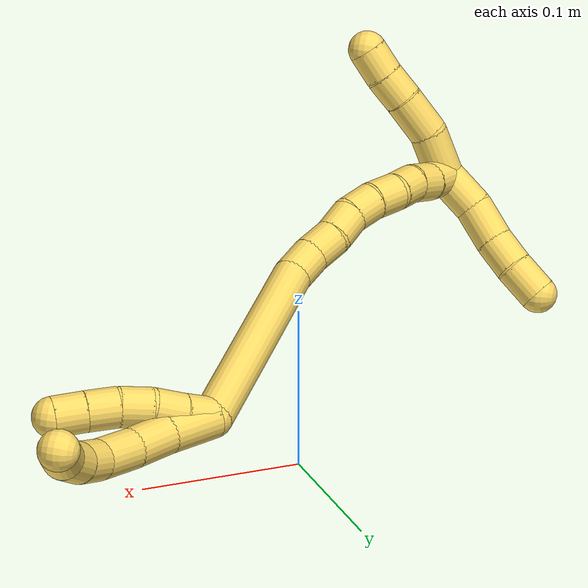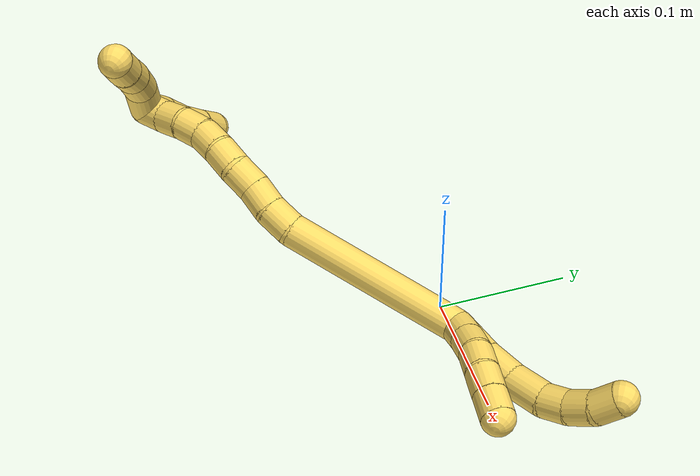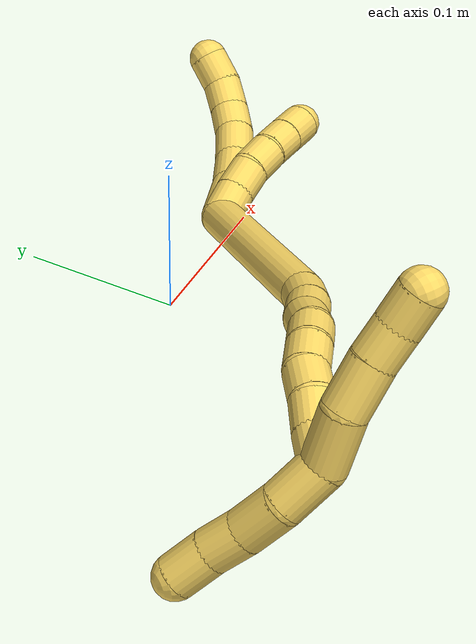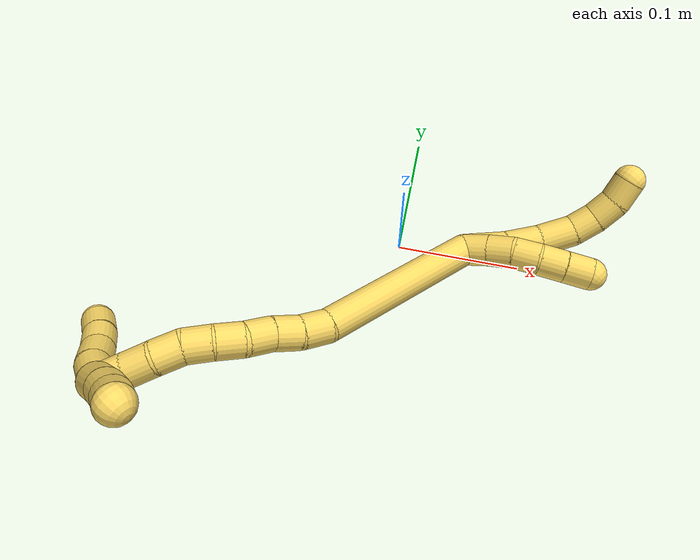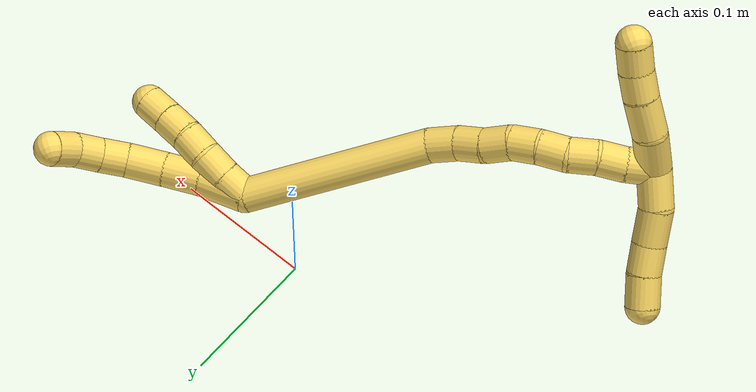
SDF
<sdf version="1.7">
 <world name="default">
  <model name="5">
   <static>0</static>
   <link name="5">
    <collision name="collision-cylinder-e_1_2_8">
     <pose>0.012932 0.000393 -0.010883 -3.10552 0.870906 -3.0641</pose>
     <geometry><cylinder><radius>0.0125</radius><length>0.033812</length></cylinder></geometry>
     <surface>
      <friction><ode><mu>1.16</mu><mu2>1.16</mu2><slip1>0</slip1><slip2>0</slip2></ode></friction>
      <contact><ode><kp>1e+06</kp><kd>1</kd><max_vel>0</max_vel><min_depth>0.001</min_depth></ode></contact>
     </surface>
    </collision>
    <visual name="visual-cylinder-e_1_2_8">
     <pose>0.012932 0.000393 -0.010883 -3.10552 0.870906 -3.0641</pose>
     <geometry><cylinder><radius>0.0125</radius><length>0.033812</length></cylinder></geometry>
     <material><ambient>1 0.858824 0.4 1</ambient></material>
    </visual>
    <collision name="collision-cylinder-e_2_8_9">
     <pose>0.037528 0.000729 -0.029352 3.1341 0.994122 3.12778</pose>
     <geometry><cylinder><radius>0.0125</radius><length>0.027829</length></cylinder></geometry>
     <surface>
      <friction><ode><mu>1.16</mu><mu2>1.16</mu2><slip1>0</slip1><slip2>0</slip2></ode></friction>
      <contact><ode><kp>1e+06</kp><kd>1</kd><max_vel>0</max_vel><min_depth>0.001</min_depth></ode></contact>
     </surface>
    </collision>
    <visual name="visual-cylinder-e_2_8_9">
     <pose>0.037528 0.000729 -0.029352 3.1341 0.994122 3.12778</pose>
     <geometry><cylinder><radius>0.0125</radius><length>0.027829</length></cylinder></geometry>
     <material><ambient>1 0.858824 0.4 1</ambient></material>
    </visual>
    <collision name="collision-cylinder-e_3_9_10">
     <pose>0.061315 -0.000936 -0.043908 2.91489 1.03777 2.74807</pose>
     <geometry><cylinder><radius>0.0125</radius><length>0.028152</length></cylinder></geometry>
     <surface>
      <friction><ode><mu>1.16</mu><mu2>1.16</mu2><slip1>0</slip1><slip2>0</slip2></ode></friction>
      <contact><ode><kp>1e+06</kp><kd>1</kd><max_vel>0</max_vel><min_depth>0.001</min_depth></ode></contact>
     </surface>
    </collision>
    <visual name="visual-cylinder-e_3_9_10">
     <pose>0.061315 -0.000936 -0.043908 2.91489 1.03777 2.74807</pose>
     <geometry><cylinder><radius>0.0125</radius><length>0.028152</length></cylinder></geometry>
     <material><ambient>1 0.858824 0.4 1</ambient></material>
    </visual>
    <collision name="collision-cylinder-e_4_10_11">
     <pose>0.082263 -0.005847 -0.054278 2.37073 1.07782 1.94925</pose>
     <geometry><cylinder><radius>0.0125</radius><length>0.020034</length></cylinder></geometry>
     <surface>
      <friction><ode><mu>1.16</mu><mu2>1.16</mu2><slip1>0</slip1><slip2>0</slip2></ode></friction>
      <contact><ode><kp>1e+06</kp><kd>1</kd><max_vel>0</max_vel><min_depth>0.001</min_depth></ode></contact>
     </surface>
    </collision>
    <visual name="visual-cylinder-e_4_10_11">
     <pose>0.082263 -0.005847 -0.054278 2.37073 1.07782 1.94925</pose>
     <geometry><cylinder><radius>0.0125</radius><length>0.020034</length></cylinder></geometry>
     <material><ambient>1 0.858824 0.4 1</ambient></material>
    </visual>
    <collision name="collision-cylinder-e_5_11_12">
     <pose>0.099229 -0.01461 -0.05998 1.96967 0.941656 1.30846</pose>
     <geometry><cylinder><radius>0.0125</radius><length>0.020139</length></cylinder></geometry>
     <surface>
      <friction><ode><mu>1.16</mu><mu2>1.16</mu2><slip1>0</slip1><slip2>0</slip2></ode></friction>
      <contact><ode><kp>1e+06</kp><kd>1</kd><max_vel>0</max_vel><min_depth>0.001</min_depth></ode></contact>
     </surface>
    </collision>
    <visual name="visual-cylinder-e_5_11_12">
     <pose>0.099229 -0.01461 -0.05998 1.96967 0.941656 1.30846</pose>
     <geometry><cylinder><radius>0.0125</radius><length>0.020139</length></cylinder></geometry>
     <material><ambient>1 0.858824 0.4 1</ambient></material>
    </visual>
    <collision name="collision-cylinder-e_6_12_6">
     <pose>0.114668 -0.026911 -0.061757 1.49429 0.816216 0.761886</pose>
     <geometry><cylinder><radius>0.0125</radius><length>0.020034</length></cylinder></geometry>
     <surface>
      <friction><ode><mu>1.16</mu><mu2>1.16</mu2><slip1>0</slip1><slip2>0</slip2></ode></friction>
      <contact><ode><kp>1e+06</kp><kd>1</kd><max_vel>0</max_vel><min_depth>0.001</min_depth></ode></contact>
     </surface>
    </collision>
    <visual name="visual-cylinder-e_6_12_6">
     <pose>0.114668 -0.026911 -0.061757 1.49429 0.816216 0.761886</pose>
     <geometry><cylinder><radius>0.0125</radius><length>0.020034</length></cylinder></geometry>
     <material><ambient>1 0.858824 0.4 1</ambient></material>
    </visual>
    <collision name="collision-cylinder-e_1_2_13">
     <pose>0.00524 -0.002834 -0.008032 2.80236 0.551597 2.0532</pose>
     <geometry><cylinder><radius>0.0125</radius><length>0.02</length></cylinder></geometry>
     <surface>
      <friction><ode><mu>1.16</mu><mu2>1.16</mu2><slip1>0</slip1><slip2>0</slip2></ode></friction>
      <contact><ode><kp>1e+06</kp><kd>1</kd><max_vel>0</max_vel><min_depth>0.001</min_depth></ode></contact>
     </surface>
    </collision>
    <visual name="visual-cylinder-e_1_2_13">
     <pose>0.00524 -0.002834 -0.008032 2.80236 0.551597 2.0532</pose>
     <geometry><cylinder><radius>0.0125</radius><length>0.02</length></cylinder></geometry>
     <material><ambient>1 0.858824 0.4 1</ambient></material>
    </visual>
    <collision name="collision-cylinder-e_2_13_14">
     <pose>0.01496 -0.008552 -0.024526 2.81315 0.464467 1.9192</pose>
     <geometry><cylinder><radius>0.0125</radius><length>0.02</length></cylinder></geometry>
     <surface>
      <friction><ode><mu>1.16</mu><mu2>1.16</mu2><slip1>0</slip1><slip2>0</slip2></ode></friction>
      <contact><ode><kp>1e+06</kp><kd>1</kd><max_vel>0</max_vel><min_depth>0.001</min_depth></ode></contact>
     </surface>
    </collision>
    <visual name="visual-cylinder-e_2_13_14">
     <pose>0.01496 -0.008552 -0.024526 2.81315 0.464467 1.9192</pose>
     <geometry><cylinder><radius>0.0125</radius><length>0.02</length></cylinder></geometry>
     <material><ambient>1 0.858824 0.4 1</ambient></material>
    </visual>
    <collision name="collision-cylinder-e_3_14_15">
     <pose>0.02357 -0.012358 -0.042049 3.04024 0.425758 2.68063</pose>
     <geometry><cylinder><radius>0.0125</radius><length>0.02</length></cylinder></geometry>
     <surface>
      <friction><ode><mu>1.16</mu><mu2>1.16</mu2><slip1>0</slip1><slip2>0</slip2></ode></friction>
      <contact><ode><kp>1e+06</kp><kd>1</kd><max_vel>0</max_vel><min_depth>0.001</min_depth></ode></contact>
     </surface>
    </collision>
    <visual name="visual-cylinder-e_3_14_15">
     <pose>0.02357 -0.012358 -0.042049 3.04024 0.425758 2.68063</pose>
     <geometry><cylinder><radius>0.0125</radius><length>0.02</length></cylinder></geometry>
     <material><ambient>1 0.858824 0.4 1</ambient></material>
    </visual>
    <collision name="collision-cylinder-e_4_15_16">
     <pose>0.032391 -0.012725 -0.059923 -3.07877 0.488278 -2.89066</pose>
     <geometry><cylinder><radius>0.0125</radius><length>0.02</length></cylinder></geometry>
     <surface>
      <friction><ode><mu>1.16</mu><mu2>1.16</mu2><slip1>0</slip1><slip2>0</slip2></ode></friction>
      <contact><ode><kp>1e+06</kp><kd>1</kd><max_vel>0</max_vel><min_depth>0.001</min_depth></ode></contact>
     </surface>
    </collision>
    <visual name="visual-cylinder-e_4_15_16">
     <pose>0.032391 -0.012725 -0.059923 -3.07877 0.488278 -2.89066</pose>
     <geometry><cylinder><radius>0.0125</radius><length>0.02</length></cylinder></geometry>
     <material><ambient>1 0.858824 0.4 1</ambient></material>
    </visual>
    <collision name="collision-cylinder-e_5_16_5">
     <pose>0.041864 -0.011332 -0.07748 -3.04603 0.498558 -2.77027</pose>
     <geometry><cylinder><radius>0.0125</radius><length>0.02</length></cylinder></geometry>
     <surface>
      <friction><ode><mu>1.16</mu><mu2>1.16</mu2><slip1>0</slip1><slip2>0</slip2></ode></friction>
      <contact><ode><kp>1e+06</kp><kd>1</kd><max_vel>0</max_vel><min_depth>0.001</min_depth></ode></contact>
     </surface>
    </collision>
    <visual name="visual-cylinder-e_5_16_5">
     <pose>0.041864 -0.011332 -0.07748 -3.04603 0.498558 -2.77027</pose>
     <geometry><cylinder><radius>0.0125</radius><length>0.02</length></cylinder></geometry>
     <material><ambient>1 0.858824 0.4 1</ambient></material>
    </visual>
    <collision name="collision-cylinder-e_1_2_17">
     <pose>-0.066151 -0.016798 0.008733 1.09137 -1.29205 -0.858625</pose>
     <geometry><cylinder><radius>0.0125</radius><length>0.137614</length></cylinder></geometry>
     <surface>
      <friction><ode><mu>1.16</mu><mu2>1.16</mu2><slip1>0</slip1><slip2>0</slip2></ode></friction>
      <contact><ode><kp>1e+06</kp><kd>1</kd><max_vel>0</max_vel><min_depth>0.001</min_depth></ode></contact>
     </surface>
    </collision>
    <visual name="visual-cylinder-e_1_2_17">
     <pose>-0.066151 -0.016798 0.008733 1.09137 -1.29205 -0.858625</pose>
     <geometry><cylinder><radius>0.0125</radius><length>0.137614</length></cylinder></geometry>
     <material><ambient>1 0.858824 0.4 1</ambient></material>
    </visual>
    <collision name="collision-cylinder-e_2_17_18">
     <pose>-0.141852 -0.037016 0.021249 0.735095 -1.08027 -0.453804</pose>
     <geometry><cylinder><radius>0.0125</radius><length>0.021652</length></cylinder></geometry>
     <surface>
      <friction><ode><mu>1.16</mu><mu2>1.16</mu2><slip1>0</slip1><slip2>0</slip2></ode></friction>
      <contact><ode><kp>1e+06</kp><kd>1</kd><max_vel>0</max_vel><min_depth>0.001</min_depth></ode></contact>
     </surface>
    </collision>
    <visual name="visual-cylinder-e_2_17_18">
     <pose>-0.141852 -0.037016 0.021249 0.735095 -1.08027 -0.453804</pose>
     <geometry><cylinder><radius>0.0125</radius><length>0.021652</length></cylinder></geometry>
     <material><ambient>1 0.858824 0.4 1</ambient></material>
    </visual>
    <collision name="collision-cylinder-e_3_18_19">
     <pose>-0.159339 -0.044 0.030258 0.598498 -0.897953 -0.295119</pose>
     <geometry><cylinder><radius>0.0125</radius><length>0.020299</length></cylinder></geometry>
     <surface>
      <friction><ode><mu>1.16</mu><mu2>1.16</mu2><slip1>0</slip1><slip2>0</slip2></ode></friction>
      <contact><ode><kp>1e+06</kp><kd>1</kd><max_vel>0</max_vel><min_depth>0.001</min_depth></ode></contact>
     </surface>
    </collision>
    <visual name="visual-cylinder-e_3_18_19">
     <pose>-0.159339 -0.044 0.030258 0.598498 -0.897953 -0.295119</pose>
     <geometry><cylinder><radius>0.0125</radius><length>0.020299</length></cylinder></geometry>
     <material><ambient>1 0.858824 0.4 1</ambient></material>
    </visual>
    <collision name="collision-cylinder-e_4_19_20">
     <pose>-0.176036 -0.051516 0.038871 0.862187 -1.03464 -0.511944</pose>
     <geometry><cylinder><radius>0.0125</radius><length>0.020378</length></cylinder></geometry>
     <surface>
      <friction><ode><mu>1.16</mu><mu2>1.16</mu2><slip1>0</slip1><slip2>0</slip2></ode></friction>
      <contact><ode><kp>1e+06</kp><kd>1</kd><max_vel>0</max_vel><min_depth>0.001</min_depth></ode></contact>
     </surface>
    </collision>
    <visual name="visual-cylinder-e_4_19_20">
     <pose>-0.176036 -0.051516 0.038871 0.862187 -1.03464 -0.511944</pose>
     <geometry><cylinder><radius>0.0125</radius><length>0.020378</length></cylinder></geometry>
     <material><ambient>1 0.858824 0.4 1</ambient></material>
    </visual>
    <collision name="collision-cylinder-e_5_20_21">
     <pose>-0.192921 -0.057681 0.047654 0.389248 -0.948271 -0.201629</pose>
     <geometry><cylinder><radius>0.0125</radius><length>0.020004</length></cylinder></geometry>
     <surface>
      <friction><ode><mu>1.16</mu><mu2>1.16</mu2><slip1>0</slip1><slip2>0</slip2></ode></friction>
      <contact><ode><kp>1e+06</kp><kd>1</kd><max_vel>0</max_vel><min_depth>0.001</min_depth></ode></contact>
     </surface>
    </collision>
    <visual name="visual-cylinder-e_5_20_21">
     <pose>-0.192921 -0.057681 0.047654 0.389248 -0.948271 -0.201629</pose>
     <geometry><cylinder><radius>0.0125</radius><length>0.020004</length></cylinder></geometry>
     <material><ambient>1 0.858824 0.4 1</ambient></material>
    </visual>
    <collision name="collision-cylinder-e_6_21_22">
     <pose>-0.209181 -0.060351 0.058881 0.078263 -0.947388 -0.040134</pose>
     <geometry><cylinder><radius>0.0125</radius><length>0.020037</length></cylinder></geometry>
     <surface>
      <friction><ode><mu>1.16</mu><mu2>1.16</mu2><slip1>0</slip1><slip2>0</slip2></ode></friction>
      <contact><ode><kp>1e+06</kp><kd>1</kd><max_vel>0</max_vel><min_depth>0.001</min_depth></ode></contact>
     </surface>
    </collision>
    <visual name="visual-cylinder-e_6_21_22">
     <pose>-0.209181 -0.060351 0.058881 0.078263 -0.947388 -0.040134</pose>
     <geometry><cylinder><radius>0.0125</radius><length>0.020037</length></cylinder></geometry>
     <material><ambient>1 0.858824 0.4 1</ambient></material>
    </visual>
    <collision name="collision-cylinder-e_7_22_23">
     <pose>-0.226564 -0.060253 0.068488 -0.146173 -1.17938 0.097901</pose>
     <geometry><cylinder><radius>0.0125</radius><length>0.020013</length></cylinder></geometry>
     <surface>
      <friction><ode><mu>1.16</mu><mu2>1.16</mu2><slip1>0</slip1><slip2>0</slip2></ode></friction>
      <contact><ode><kp>1e+06</kp><kd>1</kd><max_vel>0</max_vel><min_depth>0.001</min_depth></ode></contact>
     </surface>
    </collision>
    <visual name="visual-cylinder-e_7_22_23">
     <pose>-0.226564 -0.060253 0.068488 -0.146173 -1.17938 0.097901</pose>
     <geometry><cylinder><radius>0.0125</radius><length>0.020013</length></cylinder></geometry>
     <material><ambient>1 0.858824 0.4 1</ambient></material>
    </visual>
    <collision name="collision-cylinder-e_8_23_24">
     <pose>-0.244468 -0.057118 0.076562 -0.5405 -1.04591 0.316732</pose>
     <geometry><cylinder><radius>0.0125</radius><length>0.020001</length></cylinder></geometry>
     <surface>
      <friction><ode><mu>1.16</mu><mu2>1.16</mu2><slip1>0</slip1><slip2>0</slip2></ode></friction>
      <contact><ode><kp>1e+06</kp><kd>1</kd><max_vel>0</max_vel><min_depth>0.001</min_depth></ode></contact>
     </surface>
    </collision>
    <visual name="visual-cylinder-e_8_23_24">
     <pose>-0.244468 -0.057118 0.076562 -0.5405 -1.04591 0.316732</pose>
     <geometry><cylinder><radius>0.0125</radius><length>0.020001</length></cylinder></geometry>
     <material><ambient>1 0.858824 0.4 1</ambient></material>
    </visual>
    <collision name="collision-cylinder-e_9_24_1">
     <pose>-0.262301 -0.05329 0.084627 -0.320204 -1.16265 0.211419</pose>
     <geometry><cylinder><radius>0.0125</radius><length>0.020002</length></cylinder></geometry>
     <surface>
      <friction><ode><mu>1.16</mu><mu2>1.16</mu2><slip1>0</slip1><slip2>0</slip2></ode></friction>
      <contact><ode><kp>1e+06</kp><kd>1</kd><max_vel>0</max_vel><min_depth>0.001</min_depth></ode></contact>
     </surface>
    </collision>
    <visual name="visual-cylinder-e_9_24_1">
     <pose>-0.262301 -0.05329 0.084627 -0.320204 -1.16265 0.211419</pose>
     <geometry><cylinder><radius>0.0125</radius><length>0.020002</length></cylinder></geometry>
     <material><ambient>1 0.858824 0.4 1</ambient></material>
    </visual>
    <collision name="collision-cylinder-e_1_1_25">
     <pose>-0.271694 -0.066413 0.081767 2.00288 -0.013444 -0.021005</pose>
     <geometry><cylinder><radius>0.0125</radius><length>0.031657</length></cylinder></geometry>
     <surface>
      <friction><ode><mu>1.16</mu><mu2>1.16</mu2><slip1>0</slip1><slip2>0</slip2></ode></friction>
      <contact><ode><kp>1e+06</kp><kd>1</kd><max_vel>0</max_vel><min_depth>0.001</min_depth></ode></contact>
     </surface>
    </collision>
    <visual name="visual-cylinder-e_1_1_25">
     <pose>-0.271694 -0.066413 0.081767 2.00288 -0.013444 -0.021005</pose>
     <geometry><cylinder><radius>0.0125</radius><length>0.031657</length></cylinder></geometry>
     <material><ambient>1 0.858824 0.4 1</ambient></material>
    </visual>
    <collision name="collision-cylinder-e_2_25_26">
     <pose>-0.271361 -0.091545 0.066119 2.26847 0.038857 0.083242</pose>
     <geometry><cylinder><radius>0.0125</radius><length>0.028102</length></cylinder></geometry>
     <surface>
      <friction><ode><mu>1.16</mu><mu2>1.16</mu2><slip1>0</slip1><slip2>0</slip2></ode></friction>
      <contact><ode><kp>1e+06</kp><kd>1</kd><max_vel>0</max_vel><min_depth>0.001</min_depth></ode></contact>
     </surface>
    </collision>
    <visual name="visual-cylinder-e_2_25_26">
     <pose>-0.271361 -0.091545 0.066119 2.26847 0.038857 0.083242</pose>
     <geometry><cylinder><radius>0.0125</radius><length>0.028102</length></cylinder></geometry>
     <material><ambient>1 0.858824 0.4 1</ambient></material>
    </visual>
    <collision name="collision-cylinder-e_3_26_27">
     <pose>-0.271111 -0.109577 0.050228 2.32778 -0.029597 -0.068656</pose>
     <geometry><cylinder><radius>0.0125</radius><length>0.020018</length></cylinder></geometry>
     <surface>
      <friction><ode><mu>1.16</mu><mu2>1.16</mu2><slip1>0</slip1><slip2>0</slip2></ode></friction>
      <contact><ode><kp>1e+06</kp><kd>1</kd><max_vel>0</max_vel><min_depth>0.001</min_depth></ode></contact>
     </surface>
    </collision>
    <visual name="visual-cylinder-e_3_26_27">
     <pose>-0.271111 -0.109577 0.050228 2.32778 -0.029597 -0.068656</pose>
     <geometry><cylinder><radius>0.0125</radius><length>0.020018</length></cylinder></geometry>
     <material><ambient>1 0.858824 0.4 1</ambient></material>
    </visual>
    <collision name="collision-cylinder-e_4_27_4">
     <pose>-0.272325 -0.124719 0.037074 2.24463 -0.090908 -0.188495</pose>
     <geometry><cylinder><radius>0.0125</radius><length>0.020223</length></cylinder></geometry>
     <surface>
      <friction><ode><mu>1.16</mu><mu2>1.16</mu2><slip1>0</slip1><slip2>0</slip2></ode></friction>
      <contact><ode><kp>1e+06</kp><kd>1</kd><max_vel>0</max_vel><min_depth>0.001</min_depth></ode></contact>
     </surface>
    </collision>
    <visual name="visual-cylinder-e_4_27_4">
     <pose>-0.272325 -0.124719 0.037074 2.24463 -0.090908 -0.188495</pose>
     <geometry><cylinder><radius>0.0125</radius><length>0.020223</length></cylinder></geometry>
     <material><ambient>1 0.858824 0.4 1</ambient></material>
    </visual>
    <collision name="collision-cylinder-e_1_1_28">
     <pose>-0.269004 -0.043387 0.099211 -0.674722 0.176943 -0.062209</pose>
     <geometry><cylinder><radius>0.0125</radius><length>0.028143</length></cylinder></geometry>
     <surface>
      <friction><ode><mu>1.16</mu><mu2>1.16</mu2><slip1>0</slip1><slip2>0</slip2></ode></friction>
      <contact><ode><kp>1e+06</kp><kd>1</kd><max_vel>0</max_vel><min_depth>0.001</min_depth></ode></contact>
     </surface>
    </collision>
    <visual name="visual-cylinder-e_1_1_28">
     <pose>-0.269004 -0.043387 0.099211 -0.674722 0.176943 -0.062209</pose>
     <geometry><cylinder><radius>0.0125</radius><length>0.028143</length></cylinder></geometry>
     <material><ambient>1 0.858824 0.4 1</ambient></material>
    </visual>
    <collision name="collision-cylinder-e_2_28_29">
     <pose>-0.261551 -0.025922 0.118446 -0.808243 0.387633 -0.16749</pose>
     <geometry><cylinder><radius>0.0125</radius><length>0.026328</length></cylinder></geometry>
     <surface>
      <friction><ode><mu>1.16</mu><mu2>1.16</mu2><slip1>0</slip1><slip2>0</slip2></ode></friction>
      <contact><ode><kp>1e+06</kp><kd>1</kd><max_vel>0</max_vel><min_depth>0.001</min_depth></ode></contact>
     </surface>
    </collision>
    <visual name="visual-cylinder-e_2_28_29">
     <pose>-0.261551 -0.025922 0.118446 -0.808243 0.387633 -0.16749</pose>
     <geometry><cylinder><radius>0.0125</radius><length>0.026328</length></cylinder></geometry>
     <material><ambient>1 0.858824 0.4 1</ambient></material>
    </visual>
    <collision name="collision-cylinder-e_3_29_30">
     <pose>-0.252209 -0.01087 0.134714 -0.671697 0.41071 -0.145162</pose>
     <geometry><cylinder><radius>0.0125</radius><length>0.021872</length></cylinder></geometry>
     <surface>
      <friction><ode><mu>1.16</mu><mu2>1.16</mu2><slip1>0</slip1><slip2>0</slip2></ode></friction>
      <contact><ode><kp>1e+06</kp><kd>1</kd><max_vel>0</max_vel><min_depth>0.001</min_depth></ode></contact>
     </surface>
    </collision>
    <visual name="visual-cylinder-e_3_29_30">
     <pose>-0.252209 -0.01087 0.134714 -0.671697 0.41071 -0.145162</pose>
     <geometry><cylinder><radius>0.0125</radius><length>0.021872</length></cylinder></geometry>
     <material><ambient>1 0.858824 0.4 1</ambient></material>
    </visual>
    <collision name="collision-cylinder-e_4_30_3">
     <pose>-0.244506 0.002187 0.151634 -0.644417 0.28593 -0.096037</pose>
     <geometry><cylinder><radius>0.0125</radius><length>0.023657</length></cylinder></geometry>
     <surface>
      <friction><ode><mu>1.16</mu><mu2>1.16</mu2><slip1>0</slip1><slip2>0</slip2></ode></friction>
      <contact><ode><kp>1e+06</kp><kd>1</kd><max_vel>0</max_vel><min_depth>0.001</min_depth></ode></contact>
     </surface>
    </collision>
    <visual name="visual-cylinder-e_4_30_3">
     <pose>-0.244506 0.002187 0.151634 -0.644417 0.28593 -0.096037</pose>
     <geometry><cylinder><radius>0.0125</radius><length>0.023657</length></cylinder></geometry>
     <material><ambient>1 0.858824 0.4 1</ambient></material>
    </visual>
    <collision name="collision-sphere-3">
     <pose>-0.24117 0.009004 0.160706 0 -0 0</pose>
     <geometry><sphere><radius>0.0125</radius></sphere></geometry>
     <surface>
      <friction><ode><mu>1.16</mu><mu2>1.16</mu2><slip1>0</slip1><slip2>0</slip2></ode></friction>
      <contact><ode><kp>1e+06</kp><kd>1</kd><max_vel>0</max_vel><min_depth>0.001</min_depth></ode></contact>
     </surface>
    </collision>
    <visual name="visual-sphere-3">
     <pose>-0.24117 0.009004 0.160706 0 -0 0</pose>
     <geometry><sphere><radius>0.0125</radius></sphere></geometry>
     <material><ambient>1 0.858824 0.4 1</ambient></material>
    </visual>
    <collision name="collision-sphere-30">
     <pose>-0.247842 -0.00463 0.142562 0 -0 0</pose>
     <geometry><sphere><radius>0.0125</radius></sphere></geometry>
     <surface>
      <friction><ode><mu>1.16</mu><mu2>1.16</mu2><slip1>0</slip1><slip2>0</slip2></ode></friction>
      <contact><ode><kp>1e+06</kp><kd>1</kd><max_vel>0</max_vel><min_depth>0.001</min_depth></ode></contact>
     </surface>
    </collision>
    <visual name="visual-sphere-30">
     <pose>-0.247842 -0.00463 0.142562 0 -0 0</pose>
     <geometry><sphere><radius>0.0125</radius></sphere></geometry>
     <material><ambient>1 0.858824 0.4 1</ambient></material>
    </visual>
    <collision name="collision-sphere-29">
     <pose>-0.256575 -0.01711 0.126865 0 -0 0</pose>
     <geometry><sphere><radius>0.0125</radius></sphere></geometry>
     <surface>
      <friction><ode><mu>1.16</mu><mu2>1.16</mu2><slip1>0</slip1><slip2>0</slip2></ode></friction>
      <contact><ode><kp>1e+06</kp><kd>1</kd><max_vel>0</max_vel><min_depth>0.001</min_depth></ode></contact>
     </surface>
    </collision>
    <visual name="visual-sphere-29">
     <pose>-0.256575 -0.01711 0.126865 0 -0 0</pose>
     <geometry><sphere><radius>0.0125</radius></sphere></geometry>
     <material><ambient>1 0.858824 0.4 1</ambient></material>
    </visual>
    <collision name="collision-sphere-28">
     <pose>-0.266527 -0.034735 0.110028 0 -0 0</pose>
     <geometry><sphere><radius>0.0125</radius></sphere></geometry>
     <surface>
      <friction><ode><mu>1.16</mu><mu2>1.16</mu2><slip1>0</slip1><slip2>0</slip2></ode></friction>
      <contact><ode><kp>1e+06</kp><kd>1</kd><max_vel>0</max_vel><min_depth>0.001</min_depth></ode></contact>
     </surface>
    </collision>
    <visual name="visual-sphere-28">
     <pose>-0.266527 -0.034735 0.110028 0 -0 0</pose>
     <geometry><sphere><radius>0.0125</radius></sphere></geometry>
     <material><ambient>1 0.858824 0.4 1</ambient></material>
    </visual>
    <collision name="collision-sphere-4">
     <pose>-0.273243 -0.132587 0.030791 0 -0 0</pose>
     <geometry><sphere><radius>0.0125</radius></sphere></geometry>
     <surface>
      <friction><ode><mu>1.16</mu><mu2>1.16</mu2><slip1>0</slip1><slip2>0</slip2></ode></friction>
      <contact><ode><kp>1e+06</kp><kd>1</kd><max_vel>0</max_vel><min_depth>0.001</min_depth></ode></contact>
     </surface>
    </collision>
    <visual name="visual-sphere-4">
     <pose>-0.273243 -0.132587 0.030791 0 -0 0</pose>
     <geometry><sphere><radius>0.0125</radius></sphere></geometry>
     <material><ambient>1 0.858824 0.4 1</ambient></material>
    </visual>
    <collision name="collision-sphere-27">
     <pose>-0.271407 -0.11685 0.043358 0 -0 0</pose>
     <geometry><sphere><radius>0.0125</radius></sphere></geometry>
     <surface>
      <friction><ode><mu>1.16</mu><mu2>1.16</mu2><slip1>0</slip1><slip2>0</slip2></ode></friction>
      <contact><ode><kp>1e+06</kp><kd>1</kd><max_vel>0</max_vel><min_depth>0.001</min_depth></ode></contact>
     </surface>
    </collision>
    <visual name="visual-sphere-27">
     <pose>-0.271407 -0.11685 0.043358 0 -0 0</pose>
     <geometry><sphere><radius>0.0125</radius></sphere></geometry>
     <material><ambient>1 0.858824 0.4 1</ambient></material>
    </visual>
    <collision name="collision-sphere-26">
     <pose>-0.270815 -0.102305 0.057099 0 -0 0</pose>
     <geometry><sphere><radius>0.0125</radius></sphere></geometry>
     <surface>
      <friction><ode><mu>1.16</mu><mu2>1.16</mu2><slip1>0</slip1><slip2>0</slip2></ode></friction>
      <contact><ode><kp>1e+06</kp><kd>1</kd><max_vel>0</max_vel><min_depth>0.001</min_depth></ode></contact>
     </surface>
    </collision>
    <visual name="visual-sphere-26">
     <pose>-0.270815 -0.102305 0.057099 0 -0 0</pose>
     <geometry><sphere><radius>0.0125</radius></sphere></geometry>
     <material><ambient>1 0.858824 0.4 1</ambient></material>
    </visual>
    <collision name="collision-sphere-25">
     <pose>-0.271906 -0.080785 0.075139 0 -0 0</pose>
     <geometry><sphere><radius>0.0125</radius></sphere></geometry>
     <surface>
      <friction><ode><mu>1.16</mu><mu2>1.16</mu2><slip1>0</slip1><slip2>0</slip2></ode></friction>
      <contact><ode><kp>1e+06</kp><kd>1</kd><max_vel>0</max_vel><min_depth>0.001</min_depth></ode></contact>
     </surface>
    </collision>
    <visual name="visual-sphere-25">
     <pose>-0.271906 -0.080785 0.075139 0 -0 0</pose>
     <geometry><sphere><radius>0.0125</radius></sphere></geometry>
     <material><ambient>1 0.858824 0.4 1</ambient></material>
    </visual>
    <collision name="collision-sphere-1">
     <pose>-0.271481 -0.05204 0.088394 0 -0 0</pose>
     <geometry><sphere><radius>0.0125</radius></sphere></geometry>
     <surface>
      <friction><ode><mu>1.16</mu><mu2>1.16</mu2><slip1>0</slip1><slip2>0</slip2></ode></friction>
      <contact><ode><kp>1e+06</kp><kd>1</kd><max_vel>0</max_vel><min_depth>0.001</min_depth></ode></contact>
     </surface>
    </collision>
    <visual name="visual-sphere-1">
     <pose>-0.271481 -0.05204 0.088394 0 -0 0</pose>
     <geometry><sphere><radius>0.0125</radius></sphere></geometry>
     <material><ambient>1 0.858824 0.4 1</ambient></material>
    </visual>
    <collision name="collision-sphere-24">
     <pose>-0.253122 -0.054539 0.080859 0 -0 0</pose>
     <geometry><sphere><radius>0.0125</radius></sphere></geometry>
     <surface>
      <friction><ode><mu>1.16</mu><mu2>1.16</mu2><slip1>0</slip1><slip2>0</slip2></ode></friction>
      <contact><ode><kp>1e+06</kp><kd>1</kd><max_vel>0</max_vel><min_depth>0.001</min_depth></ode></contact>
     </surface>
    </collision>
    <visual name="visual-sphere-24">
     <pose>-0.253122 -0.054539 0.080859 0 -0 0</pose>
     <geometry><sphere><radius>0.0125</radius></sphere></geometry>
     <material><ambient>1 0.858824 0.4 1</ambient></material>
    </visual>
    <collision name="collision-sphere-23">
     <pose>-0.235814 -0.059697 0.072265 0 -0 0</pose>
     <geometry><sphere><radius>0.0125</radius></sphere></geometry>
     <surface>
      <friction><ode><mu>1.16</mu><mu2>1.16</mu2><slip1>0</slip1><slip2>0</slip2></ode></friction>
      <contact><ode><kp>1e+06</kp><kd>1</kd><max_vel>0</max_vel><min_depth>0.001</min_depth></ode></contact>
     </surface>
    </collision>
    <visual name="visual-sphere-23">
     <pose>-0.235814 -0.059697 0.072265 0 -0 0</pose>
     <geometry><sphere><radius>0.0125</radius></sphere></geometry>
     <material><ambient>1 0.858824 0.4 1</ambient></material>
    </visual>
    <collision name="collision-sphere-22">
     <pose>-0.217315 -0.060809 0.064712 0 -0 0</pose>
     <geometry><sphere><radius>0.0125</radius></sphere></geometry>
     <surface>
      <friction><ode><mu>1.16</mu><mu2>1.16</mu2><slip1>0</slip1><slip2>0</slip2></ode></friction>
      <contact><ode><kp>1e+06</kp><kd>1</kd><max_vel>0</max_vel><min_depth>0.001</min_depth></ode></contact>
     </surface>
    </collision>
    <visual name="visual-sphere-22">
     <pose>-0.217315 -0.060809 0.064712 0 -0 0</pose>
     <geometry><sphere><radius>0.0125</radius></sphere></geometry>
     <material><ambient>1 0.858824 0.4 1</ambient></material>
    </visual>
    <collision name="collision-sphere-21">
     <pose>-0.201047 -0.059894 0.05305 0 -0 0</pose>
     <geometry><sphere><radius>0.0125</radius></sphere></geometry>
     <surface>
      <friction><ode><mu>1.16</mu><mu2>1.16</mu2><slip1>0</slip1><slip2>0</slip2></ode></friction>
      <contact><ode><kp>1e+06</kp><kd>1</kd><max_vel>0</max_vel><min_depth>0.001</min_depth></ode></contact>
     </surface>
    </collision>
    <visual name="visual-sphere-21">
     <pose>-0.201047 -0.059894 0.05305 0 -0 0</pose>
     <geometry><sphere><radius>0.0125</radius></sphere></geometry>
     <material><ambient>1 0.858824 0.4 1</ambient></material>
    </visual>
    <collision name="collision-sphere-12">
     <pose>0.10737 -0.02007 -0.062281 0 -0 0</pose>
     <geometry><sphere><radius>0.0125</radius></sphere></geometry>
     <surface>
      <friction><ode><mu>1.16</mu><mu2>1.16</mu2><slip1>0</slip1><slip2>0</slip2></ode></friction>
      <contact><ode><kp>1e+06</kp><kd>1</kd><max_vel>0</max_vel><min_depth>0.001</min_depth></ode></contact>
     </surface>
    </collision>
    <visual name="visual-sphere-12">
     <pose>0.10737 -0.02007 -0.062281 0 -0 0</pose>
     <geometry><sphere><radius>0.0125</radius></sphere></geometry>
     <material><ambient>1 0.858824 0.4 1</ambient></material>
    </visual>
    <collision name="collision-sphere-11">
     <pose>0.091087 -0.00915 -0.057679 0 -0 0</pose>
     <geometry><sphere><radius>0.0125</radius></sphere></geometry>
     <surface>
      <friction><ode><mu>1.16</mu><mu2>1.16</mu2><slip1>0</slip1><slip2>0</slip2></ode></friction>
      <contact><ode><kp>1e+06</kp><kd>1</kd><max_vel>0</max_vel><min_depth>0.001</min_depth></ode></contact>
     </surface>
    </collision>
    <visual name="visual-sphere-11">
     <pose>0.091087 -0.00915 -0.057679 0 -0 0</pose>
     <geometry><sphere><radius>0.0125</radius></sphere></geometry>
     <material><ambient>1 0.858824 0.4 1</ambient></material>
    </visual>
    <collision name="collision-sphere-10">
     <pose>0.073438 -0.002544 -0.050878 0 -0 0</pose>
     <geometry><sphere><radius>0.0125</radius></sphere></geometry>
     <surface>
      <friction><ode><mu>1.16</mu><mu2>1.16</mu2><slip1>0</slip1><slip2>0</slip2></ode></friction>
      <contact><ode><kp>1e+06</kp><kd>1</kd><max_vel>0</max_vel><min_depth>0.001</min_depth></ode></contact>
     </surface>
    </collision>
    <visual name="visual-sphere-10">
     <pose>0.073438 -0.002544 -0.050878 0 -0 0</pose>
     <geometry><sphere><radius>0.0125</radius></sphere></geometry>
     <material><ambient>1 0.858824 0.4 1</ambient></material>
    </visual>
    <collision name="collision-sphere-9">
     <pose>0.049192 0.000672 -0.036938 0 -0 0</pose>
     <geometry><sphere><radius>0.0125</radius></sphere></geometry>
     <surface>
      <friction><ode><mu>1.16</mu><mu2>1.16</mu2><slip1>0</slip1><slip2>0</slip2></ode></friction>
      <contact><ode><kp>1e+06</kp><kd>1</kd><max_vel>0</max_vel><min_depth>0.001</min_depth></ode></contact>
     </surface>
    </collision>
    <visual name="visual-sphere-9">
     <pose>0.049192 0.000672 -0.036938 0 -0 0</pose>
     <geometry><sphere><radius>0.0125</radius></sphere></geometry>
     <material><ambient>1 0.858824 0.4 1</ambient></material>
    </visual>
    <collision name="collision-sphere-2">
     <geometry><sphere><radius>0.0125</radius></sphere></geometry>
     <surface>
      <friction><ode><mu>1.16</mu><mu2>1.16</mu2><slip1>0</slip1><slip2>0</slip2></ode></friction>
      <contact><ode><kp>1e+06</kp><kd>1</kd><max_vel>0</max_vel><min_depth>0.001</min_depth></ode></contact>
     </surface>
    </collision>
    <visual name="visual-sphere-2">
     <geometry><sphere><radius>0.0125</radius></sphere></geometry>
     <material><ambient>1 0.858824 0.4 1</ambient></material>
    </visual>
    <collision name="collision-sphere-19">
     <pose>-0.167277 -0.047564 0.035484 0 -0 0</pose>
     <geometry><sphere><radius>0.0125</radius></sphere></geometry>
     <surface>
      <friction><ode><mu>1.16</mu><mu2>1.16</mu2><slip1>0</slip1><slip2>0</slip2></ode></friction>
      <contact><ode><kp>1e+06</kp><kd>1</kd><max_vel>0</max_vel><min_depth>0.001</min_depth></ode></contact>
     </surface>
    </collision>
    <visual name="visual-sphere-19">
     <pose>-0.167277 -0.047564 0.035484 0 -0 0</pose>
     <geometry><sphere><radius>0.0125</radius></sphere></geometry>
     <material><ambient>1 0.858824 0.4 1</ambient></material>
    </visual>
    <collision name="collision-sphere-8">
     <pose>0.025863 0.000785 -0.021765 0 -0 0</pose>
     <geometry><sphere><radius>0.0125</radius></sphere></geometry>
     <surface>
      <friction><ode><mu>1.16</mu><mu2>1.16</mu2><slip1>0</slip1><slip2>0</slip2></ode></friction>
      <contact><ode><kp>1e+06</kp><kd>1</kd><max_vel>0</max_vel><min_depth>0.001</min_depth></ode></contact>
     </surface>
    </collision>
    <visual name="visual-sphere-8">
     <pose>0.025863 0.000785 -0.021765 0 -0 0</pose>
     <geometry><sphere><radius>0.0125</radius></sphere></geometry>
     <material><ambient>1 0.858824 0.4 1</ambient></material>
    </visual>
    <collision name="collision-sphere-6">
     <pose>0.121966 -0.033753 -0.061232 0 -0 0</pose>
     <geometry><sphere><radius>0.0125</radius></sphere></geometry>
     <surface>
      <friction><ode><mu>1.16</mu><mu2>1.16</mu2><slip1>0</slip1><slip2>0</slip2></ode></friction>
      <contact><ode><kp>1e+06</kp><kd>1</kd><max_vel>0</max_vel><min_depth>0.001</min_depth></ode></contact>
     </surface>
    </collision>
    <visual name="visual-sphere-6">
     <pose>0.121966 -0.033753 -0.061232 0 -0 0</pose>
     <geometry><sphere><radius>0.0125</radius></sphere></geometry>
     <material><ambient>1 0.858824 0.4 1</ambient></material>
    </visual>
    <collision name="collision-sphere-13">
     <pose>0.010481 -0.005668 -0.016063 0 -0 0</pose>
     <geometry><sphere><radius>0.0125</radius></sphere></geometry>
     <surface>
      <friction><ode><mu>1.16</mu><mu2>1.16</mu2><slip1>0</slip1><slip2>0</slip2></ode></friction>
      <contact><ode><kp>1e+06</kp><kd>1</kd><max_vel>0</max_vel><min_depth>0.001</min_depth></ode></contact>
     </surface>
    </collision>
    <visual name="visual-sphere-13">
     <pose>0.010481 -0.005668 -0.016063 0 -0 0</pose>
     <geometry><sphere><radius>0.0125</radius></sphere></geometry>
     <material><ambient>1 0.858824 0.4 1</ambient></material>
    </visual>
    <collision name="collision-sphere-14">
     <pose>0.01944 -0.011436 -0.032988 0 -0 0</pose>
     <geometry><sphere><radius>0.0125</radius></sphere></geometry>
     <surface>
      <friction><ode><mu>1.16</mu><mu2>1.16</mu2><slip1>0</slip1><slip2>0</slip2></ode></friction>
      <contact><ode><kp>1e+06</kp><kd>1</kd><max_vel>0</max_vel><min_depth>0.001</min_depth></ode></contact>
     </surface>
    </collision>
    <visual name="visual-sphere-14">
     <pose>0.01944 -0.011436 -0.032988 0 -0 0</pose>
     <geometry><sphere><radius>0.0125</radius></sphere></geometry>
     <material><ambient>1 0.858824 0.4 1</ambient></material>
    </visual>
    <collision name="collision-sphere-15">
     <pose>0.0277 -0.013279 -0.051109 0 -0 0</pose>
     <geometry><sphere><radius>0.0125</radius></sphere></geometry>
     <surface>
      <friction><ode><mu>1.16</mu><mu2>1.16</mu2><slip1>0</slip1><slip2>0</slip2></ode></friction>
      <contact><ode><kp>1e+06</kp><kd>1</kd><max_vel>0</max_vel><min_depth>0.001</min_depth></ode></contact>
     </surface>
    </collision>
    <visual name="visual-sphere-15">
     <pose>0.0277 -0.013279 -0.051109 0 -0 0</pose>
     <geometry><sphere><radius>0.0125</radius></sphere></geometry>
     <material><ambient>1 0.858824 0.4 1</ambient></material>
    </visual>
    <collision name="collision-sphere-16">
     <pose>0.037082 -0.01217 -0.068737 0 -0 0</pose>
     <geometry><sphere><radius>0.0125</radius></sphere></geometry>
     <surface>
      <friction><ode><mu>1.16</mu><mu2>1.16</mu2><slip1>0</slip1><slip2>0</slip2></ode></friction>
      <contact><ode><kp>1e+06</kp><kd>1</kd><max_vel>0</max_vel><min_depth>0.001</min_depth></ode></contact>
     </surface>
    </collision>
    <visual name="visual-sphere-16">
     <pose>0.037082 -0.01217 -0.068737 0 -0 0</pose>
     <geometry><sphere><radius>0.0125</radius></sphere></geometry>
     <material><ambient>1 0.858824 0.4 1</ambient></material>
    </visual>
    <collision name="collision-sphere-5">
     <pose>0.046645 -0.010494 -0.086223 0 -0 0</pose>
     <geometry><sphere><radius>0.0125</radius></sphere></geometry>
     <surface>
      <friction><ode><mu>1.16</mu><mu2>1.16</mu2><slip1>0</slip1><slip2>0</slip2></ode></friction>
      <contact><ode><kp>1e+06</kp><kd>1</kd><max_vel>0</max_vel><min_depth>0.001</min_depth></ode></contact>
     </surface>
    </collision>
    <visual name="visual-sphere-5">
     <pose>0.046645 -0.010494 -0.086223 0 -0 0</pose>
     <geometry><sphere><radius>0.0125</radius></sphere></geometry>
     <material><ambient>1 0.858824 0.4 1</ambient></material>
    </visual>
    <collision name="collision-sphere-17">
     <pose>-0.132302 -0.033596 0.017466 0 -0 0</pose>
     <geometry><sphere><radius>0.0125</radius></sphere></geometry>
     <surface>
      <friction><ode><mu>1.16</mu><mu2>1.16</mu2><slip1>0</slip1><slip2>0</slip2></ode></friction>
      <contact><ode><kp>1e+06</kp><kd>1</kd><max_vel>0</max_vel><min_depth>0.001</min_depth></ode></contact>
     </surface>
    </collision>
    <visual name="visual-sphere-17">
     <pose>-0.132302 -0.033596 0.017466 0 -0 0</pose>
     <geometry><sphere><radius>0.0125</radius></sphere></geometry>
     <material><ambient>1 0.858824 0.4 1</ambient></material>
    </visual>
    <collision name="collision-sphere-18">
     <pose>-0.151402 -0.040436 0.025032 0 -0 0</pose>
     <geometry><sphere><radius>0.0125</radius></sphere></geometry>
     <surface>
      <friction><ode><mu>1.16</mu><mu2>1.16</mu2><slip1>0</slip1><slip2>0</slip2></ode></friction>
      <contact><ode><kp>1e+06</kp><kd>1</kd><max_vel>0</max_vel><min_depth>0.001</min_depth></ode></contact>
     </surface>
    </collision>
    <visual name="visual-sphere-18">
     <pose>-0.151402 -0.040436 0.025032 0 -0 0</pose>
     <geometry><sphere><radius>0.0125</radius></sphere></geometry>
     <material><ambient>1 0.858824 0.4 1</ambient></material>
    </visual>
    <collision name="collision-sphere-20">
     <pose>-0.184795 -0.055468 0.042258 0 -0 0</pose>
     <geometry><sphere><radius>0.0125</radius></sphere></geometry>
     <surface>
      <friction><ode><mu>1.16</mu><mu2>1.16</mu2><slip1>0</slip1><slip2>0</slip2></ode></friction>
      <contact><ode><kp>1e+06</kp><kd>1</kd><max_vel>0</max_vel><min_depth>0.001</min_depth></ode></contact>
     </surface>
    </collision>
    <visual name="visual-sphere-20">
     <pose>-0.184795 -0.055468 0.042258 0 -0 0</pose>
     <geometry><sphere><radius>0.0125</radius></sphere></geometry>
     <material><ambient>1 0.858824 0.4 1</ambient></material>
    </visual>
    <inertial>
     <pose>-0.110832 -0.032284 0.024331 0 -0 0</pose>
     <mass>0.75</mass>
     <inertia><ixx>5e-06</ixx><ixy>0</ixy><ixz>0</ixz><iyy>0.00019</iyy><iyz>0</iyz><izz>0.000264</izz></inertia>
    </inertial>
   </link>
   <pose>0.052518 -0.007634 0.03607 -1.64759 0.084314 0.984302</pose>
  </model>
 </world>
</sdf>
